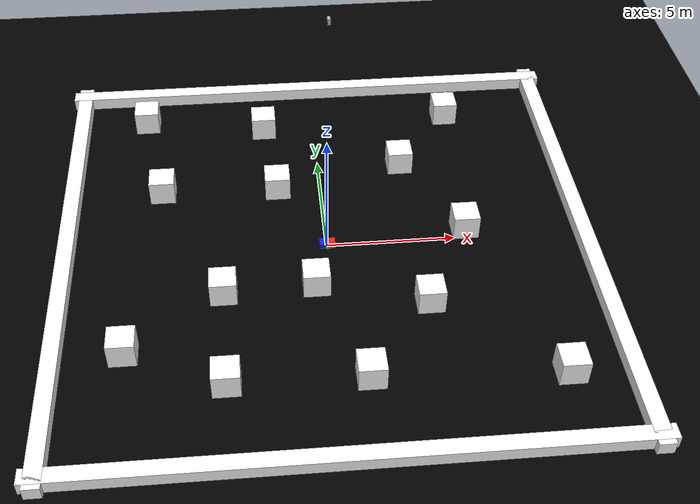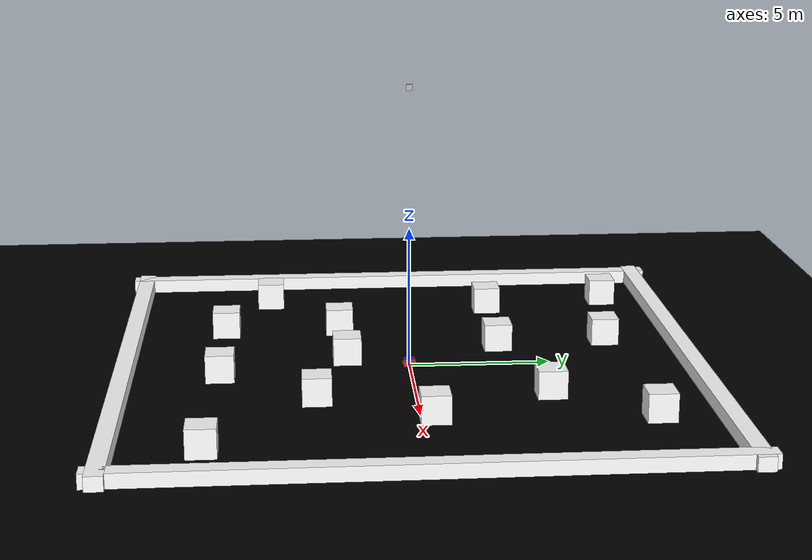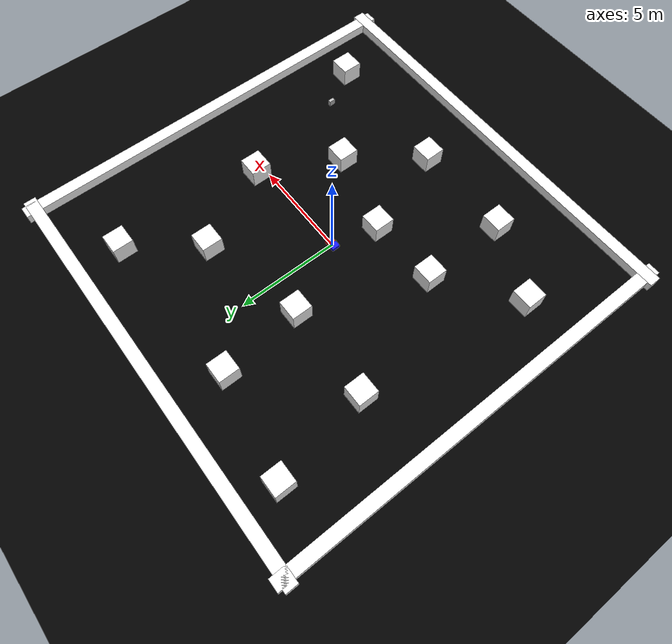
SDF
<sdf version='1.10'>
  <world name='empty'>
    <physics name='1ms' type='ignored'>
      <max_step_size>0.001</max_step_size>
      <real_time_factor>1</real_time_factor>
      <real_time_update_rate>1000</real_time_update_rate>
    </physics>
    <plugin name='gz::sim::systems::Physics' filename='gz-sim-physics-system'/>
    <plugin name='gz::sim::systems::UserCommands' filename='gz-sim-user-commands-system'/>
    <plugin name='gz::sim::systems::SceneBroadcaster' filename='gz-sim-scene-broadcaster-system'/>
    <plugin name='gz::sim::systems::Contact' filename='gz-sim-contact-system'/>
    <plugin name='gz::sim::systems::Sensors' filename='gz-sim-sensors-system'/>
    <gravity>0 0 -9.8000000000000007</gravity>
    <magnetic_field>5.5644999999999998e-06 2.2875799999999999e-05 -4.2388400000000002e-05</magnetic_field>
    <atmosphere type='adiabatic'/>
    <scene>
      <ambient>0.400000006 0.400000006 0.400000006 1</ambient>
      <background>0.699999988 0.699999988 0.699999988 1</background>
      <shadows>true</shadows>
    </scene>
    <model name='ground_plane'>
      <static>true</static>
      <link name='link'>
        <collision name='collision'>
          <geometry>
            <plane>
              <normal>0 0 1</normal>
              <size>100 100</size>
            </plane>
          </geometry>
          <surface>
            <friction>
              <ode/>
            </friction>
            <bounce/>
            <contact/>
          </surface>
        </collision>
        <visual name='visual'>
          <geometry>
            <plane>
              <normal>0 0 1</normal>
              <size>100 100</size>
            </plane>
          </geometry>
          <material>
            <ambient>0 0 0 1</ambient>
            <diffuse>0 0 0 1</diffuse>
            <specular>0 0 0 1</specular>
          </material>
        </visual>
        <pose>0 0 0 0 0 0</pose>
        <inertial>
          <pose>0 0 0 0 0 0</pose>
          <mass>1</mass>
          <inertia>
            <ixx>1</ixx>
            <ixy>0</ixy>
            <ixz>0</ixz>
            <iyy>1</iyy>
            <iyz>0</iyz>
            <izz>1</izz>
          </inertia>
        </inertial>
        <enable_wind>false</enable_wind>
      </link>
      <pose>0 0 0 0 0 0</pose>
      <self_collide>false</self_collide>
    </model>
    <!-- AMR with two-color markers (red front, blue rear) -->
    <model name='amr_with_markers'>
      <pose>0 0 0 0 0 0</pose>
      <static>false</static>

      <link name='base_link'>
        <pose>0 0 0.13 0 0 0</pose>
        <inertial>
          <mass>20.0</mass>
          <inertia>
            <ixx>1.0</ixx><iyy>1.0</iyy><izz>1.0</izz>
          </inertia>
        </inertial>
        <collision name='base_collision'>
          <geometry>
            <box><size>0.60 0.40 0.18</size></box>
          </geometry>
        </collision>
        <!-- Split the base into a red front half and blue rear half for robust color detection -->
        <visual name='base_visual_red'>
          <pose>0.15 0 0 0 0 0</pose>
          <geometry>
            <!-- half the length of the base (front) -->
            <box><size>0.30 0.40 0.18</size></box>
          </geometry>
          <material>
            <ambient>0.9 0.1 0.1 1</ambient>
            <diffuse>0.95 0.1 0.1 1</diffuse>
          </material>
        </visual>
        <visual name='base_visual_blue'>
          <pose>-0.15 0 0 0 0 0</pose>
          <geometry>
            <!-- half the length of the base (rear) -->
            <box><size>0.30 0.40 0.18</size></box>
          </geometry>
          <material>
            <ambient>0.1 0.1 0.9 1</ambient>
            <diffuse>0.1 0.1 0.95 1</diffuse>
          </material>
        </visual>
      </link>

      <link name='marker_front'>
        <pose>0.18 0.0 0.20 0 0 0</pose>
        <visual name='marker_front_visual'>
          <geometry>
            <cylinder><radius>0.06</radius><length>0.02</length></cylinder>
          </geometry>
          <material>
            <ambient>0.8 0.1 0.1 1</ambient>
            <diffuse>0.9 0.1 0.1 1</diffuse>
          </material>
        </visual>
      </link>

      <link name='marker_rear'>
        <pose>-0.18 0.0 0.20 0 0 0</pose>
        <visual name='marker_rear_visual'>
          <geometry>
            <cylinder><radius>0.06</radius><length>0.02</length></cylinder>
          </geometry>
          <material>
            <ambient>0.1 0.1 0.8 1</ambient>
            <diffuse>0.1 0.1 0.9 1</diffuse>
          </material>
        </visual>
      </link>

      <joint name='joint_marker_front' type='fixed'>
        <parent>base_link</parent>
        <child>marker_front</child>
      </joint>
      <joint name='joint_marker_rear' type='fixed'>
        <parent>base_link</parent>
        <child>marker_rear</child>
      </joint>

      <!-- New driving wheel (left) — green, no stripe -->
      <link name='left_wheel_link'>
        <pose>0 0.20 0.110 0 0 0</pose>
        <visual name='left_wheel_visual'>
          <pose>0 0 0 1.57079632679 0 0</pose>
          <geometry>
            <cylinder><radius>0.09</radius><length>0.06</length></cylinder>
          </geometry>
          <material>
            <ambient>0 0.6 0 1</ambient>
            <diffuse>0 0.8 0 1</diffuse>
          </material>
        </visual>
        <collision name='left_wheel_collision'>
          <pose>0 0 0 1.57079632679 0 0</pose>
          <geometry>
            <cylinder><radius>0.09</radius><length>0.06</length></cylinder>
          </geometry>
          <surface>
            <friction>
              <ode>
                <mu>1.0</mu>
                <mu2>1.0</mu2>
              </ode>
            </friction>
          </surface>
        </collision>
      </link>
      <!-- New driving wheel (right) — green, no stripe -->
      <link name='right_wheel_link'>
        <pose>0 -0.20 0.110 0 0 0</pose>
        <visual name='right_wheel_visual'>
          <pose>0 0 0 1.57079632679 0 0</pose>
          <geometry>
            <cylinder><radius>0.09</radius><length>0.06</length></cylinder>
          </geometry>
          <material>
            <ambient>0 0.6 0 1</ambient>
            <diffuse>0 0.8 0 1</diffuse>
          </material>
        </visual>
        <collision name='right_wheel_collision'>
          <pose>0 0 0 1.57079632679 0 0</pose>
          <geometry>
            <cylinder><radius>0.09</radius><length>0.06</length></cylinder>
          </geometry>
          <surface>
            <friction>
              <ode>
                <mu>1.0</mu>
                <mu2>1.0</mu2>
              </ode>
            </friction>
          </surface>
        </collision>
      </link>

      <joint name='left_wheel_joint' type='revolute'>
        <parent>base_link</parent>
        <child>left_wheel_link</child>
        <axis><xyz>0 1 0</xyz></axis>
      </joint>
      <joint name='right_wheel_joint' type='revolute'>
        <parent>base_link</parent>
        <child>right_wheel_link</child>
        <axis><xyz>0 1 0</xyz></axis>
      </joint>

      <!-- Small caster wheels for front and rear support -->
      <link name='caster_front'>
        <pose>0.22 0 0.057 0 0 0</pose>
        <visual name='caster_front_visual'>
          <geometry><sphere><radius>0.03</radius></sphere></geometry>
          <material><ambient>0.2 0.2 0.2 1</ambient></material>
        </visual>
        <collision name='caster_front_collision'>
          <geometry><sphere><radius>0.03</radius></sphere></geometry>
        </collision>
        <inertial>
          <mass>0.02</mass>
        </inertial>
      </link>
      <joint name='caster_front_joint' type='revolute'>
        <parent>base_link</parent>
        <child>caster_front</child>
        <axis><xyz>0 1 0</xyz></axis>
      </joint>

      <link name='caster_rear'>
        <pose>-0.22 0 0.057 0 0 0</pose>
        <visual name='caster_rear_visual'>
          <geometry><sphere><radius>0.03</radius></sphere></geometry>
          <material><ambient>0.2 0.2 0.2 1</ambient></material>
        </visual>
        <collision name='caster_rear_collision'>
          <geometry><sphere><radius>0.03</radius></sphere></geometry>
        </collision>
        <inertial>
          <mass>0.02</mass>
        </inertial>
      </link>
      <joint name='caster_rear_joint' type='revolute'>
        <parent>base_link</parent>
        <child>caster_rear</child>
        <axis><xyz>0 1 0</xyz></axis>
      </joint>

      <!-- Diff-drive plugin (Ignition/Gazebo compatible): publishes /odom and consumes /cmd_vel -->
      <plugin name='ignition::gazebo::systems::DiffDrive' filename='libignition-gazebo-diff-drive-system.so'>
        <left_joint>left_wheel_joint</left_joint>
        <right_joint>right_wheel_joint</right_joint>
        <wheel_separation>0.40</wheel_separation>
        <wheel_radius>0.09</wheel_radius>
        <!-- topic where velocity commands are read -->
        <topic>/cmd_vel</topic>
        <!-- odometry output -->
        <frame_id>odom</frame_id>
        <child_frame_id>base_link</child_frame_id>
        <odom_publish_frequency>100</odom_publish_frequency>
      </plugin>
    </model>
    <model name='box'>
      <pose>3.3872870678653726 4.567648033985396 0.49999999990199806 6.2287739151293738e-22 9.3279666454713669e-22 -3.6315533669320137e-22</pose>
      <link name='box_link'>
        <inertial>
          <inertia>
            <ixx>0.16666</ixx>
            <ixy>0</ixy>
            <ixz>0</ixz>
            <iyy>0.16666</iyy>
            <iyz>0</iyz>
            <izz>0.16666</izz>
          </inertia>
          <mass>1</mass>
          <pose>0 0 0 0 0 0</pose>
        </inertial>
        <collision name='box_collision'>
          <geometry>
            <box>
              <size>1 1 1</size>
            </box>
          </geometry>
          <surface>
            <friction>
              <ode/>
            </friction>
            <bounce/>
            <contact/>
          </surface>
        </collision>
        <visual name='box_visual'>
          <geometry>
            <box>
              <size>1 1 1</size>
            </box>
          </geometry>
          <material>
            <ambient>1 1 1 1</ambient>
            <diffuse>1 1 1 1</diffuse>
            <specular>0.100000001 0.100000001 0.100000001 1</specular>
          </material>
        </visual>
        <pose>0 0 0 0 0 0</pose>
        <enable_wind>false</enable_wind>
      </link>
      <static>false</static>
      <self_collide>false</self_collide>
    </model>
    <model name='box_1'>
      <pose>-4.0205461991467164 -2.3516789515182071 0.49999999990199806 6.2287739151293738e-22 9.3279666454713669e-22 -3.6315533669320137e-22</pose>
      <link name='box_link'>
        <inertial>
          <inertia>
            <ixx>0.16666</ixx>
            <ixy>0</ixy>
            <ixz>0</ixz>
            <iyy>0.16666</iyy>
            <iyz>0</iyz>
            <izz>0.16666</izz>
          </inertia>
          <mass>1</mass>
          <pose>0 0 0 0 0 0</pose>
        </inertial>
        <collision name='box_collision'>
          <geometry>
            <box>
              <size>1 1 1</size>
            </box>
          </geometry>
          <surface>
            <friction>
              <ode/>
            </friction>
            <bounce/>
            <contact/>
          </surface>
        </collision>
        <visual name='box_visual'>
          <geometry>
            <box>
              <size>1 1 1</size>
            </box>
          </geometry>
          <material>
            <ambient>1 1 1 1</ambient>
            <diffuse>1 1 1 1</diffuse>
            <specular>0.100000001 0.100000001 0.100000001 1</specular>
          </material>
        </visual>
        <pose>0 0 0 0 0 0</pose>
        <enable_wind>false</enable_wind>
      </link>
      <static>false</static>
      <self_collide>false</self_collide>
    </model>
    <model name='box_2'>
      <pose>3.4940917268388993 -3.3550829611756239 0.49999999990199806 6.2287739151293738e-22 9.3279666454713669e-22 -3.6315533669320137e-22</pose>
      <link name='box_link'>
        <inertial>
          <inertia>
            <ixx>0.16666</ixx>
            <ixy>0</ixy>
            <ixz>0</ixz>
            <iyy>0.16666</iyy>
            <iyz>0</iyz>
            <izz>0.16666</izz>
          </inertia>
          <mass>1</mass>
          <pose>0 0 0 0 0 0</pose>
        </inertial>
        <collision name='box_collision'>
          <geometry>
            <box>
              <size>1 1 1</size>
            </box>
          </geometry>
          <surface>
            <friction>
              <ode/>
            </friction>
            <bounce/>
            <contact/>
          </surface>
        </collision>
        <visual name='box_visual'>
          <geometry>
            <box>
              <size>1 1 1</size>
            </box>
          </geometry>
          <material>
            <ambient>1 1 1 1</ambient>
            <diffuse>1 1 1 1</diffuse>
            <specular>0.100000001 0.100000001 0.100000001 1</specular>
          </material>
        </visual>
        <pose>0 0 0 0 0 0</pose>
        <enable_wind>false</enable_wind>
      </link>
      <static>false</static>
      <self_collide>false</self_collide>
    </model>
    <model name='box_3'>
      <pose>-1.7558981664756481 3.3625765944207417 0.49999999990199806 6.2287739151293738e-22 9.3279666454713669e-22 -3.6315533669320137e-22</pose>
      <link name='box_link'>
        <inertial>
          <inertia>
            <ixx>0.16666</ixx>
            <ixy>0</ixy>
            <ixz>0</ixz>
            <iyy>0.16666</iyy>
            <iyz>0</iyz>
            <izz>0.16666</izz>
          </inertia>
          <mass>1</mass>
          <pose>0 0 0 0 0 0</pose>
        </inertial>
        <collision name='box_collision'>
          <geometry>
            <box>
              <size>1 1 1</size>
            </box>
          </geometry>
          <surface>
            <friction>
              <ode/>
            </friction>
            <bounce/>
            <contact/>
          </surface>
        </collision>
        <visual name='box_visual'>
          <geometry>
            <box>
              <size>1 1 1</size>
            </box>
          </geometry>
          <material>
            <ambient>1 1 1 1</ambient>
            <diffuse>1 1 1 1</diffuse>
            <specular>0.100000001 0.100000001 0.100000001 1</specular>
          </material>
        </visual>
        <pose>0 0 0 0 0 0</pose>
        <enable_wind>false</enable_wind>
      </link>
      <static>false</static>
      <self_collide>false</self_collide>
    </model>
    <model name='box_4'>
      <pose>5.4301532776134565 0.44632967436305093 0.49999999990199806 6.2287739151293738e-22 9.3279666454713669e-22 -3.6315533669320137e-22</pose>
      <link name='box_link'>
        <inertial>
          <inertia>
            <ixx>0.16666</ixx>
            <ixy>0</ixy>
            <ixz>0</ixz>
            <iyy>0.16666</iyy>
            <iyz>0</iyz>
            <izz>0.16666</izz>
          </inertia>
          <mass>1</mass>
          <pose>0 0 0 0 0 0</pose>
        </inertial>
        <collision name='box_collision'>
          <geometry>
            <box>
              <size>1 1 1</size>
            </box>
          </geometry>
          <surface>
            <friction>
              <ode/>
            </friction>
            <bounce/>
            <contact/>
          </surface>
        </collision>
        <visual name='box_visual'>
          <geometry>
            <box>
              <size>1 1 1</size>
            </box>
          </geometry>
          <material>
            <ambient>1 1 1 1</ambient>
            <diffuse>1 1 1 1</diffuse>
            <specular>0.100000001 0.100000001 0.100000001 1</specular>
          </material>
        </visual>
        <pose>0 0 0 0 0 0</pose>
        <enable_wind>false</enable_wind>
      </link>
      <static>false</static>
      <self_collide>false</self_collide>
    </model>
    <model name='box_5'>
      <pose>-6.3975016344592719 3.4922401292600371 0.49999999990199806 6.2287739151293738e-22 9.3279666454713669e-22 -3.6315533669320137e-22</pose>
      <link name='box_link'>
        <inertial>
          <inertia>
            <ixx>0.16666</ixx>
            <ixy>0</ixy>
            <ixz>0</ixz>
            <iyy>0.16666</iyy>
            <iyz>0</iyz>
            <izz>0.16666</izz>
          </inertia>
          <mass>1</mass>
          <pose>0 0 0 0 0 0</pose>
        </inertial>
        <collision name='box_collision'>
          <geometry>
            <box>
              <size>1 1 1</size>
            </box>
          </geometry>
          <surface>
            <friction>
              <ode/>
            </friction>
            <bounce/>
            <contact/>
          </surface>
        </collision>
        <visual name='box_visual'>
          <geometry>
            <box>
              <size>1 1 1</size>
            </box>
          </geometry>
          <material>
            <ambient>1 1 1 1</ambient>
            <diffuse>1 1 1 1</diffuse>
            <specular>0.100000001 0.100000001 0.100000001 1</specular>
          </material>
        </visual>
        <pose>0 0 0 0 0 0</pose>
        <enable_wind>false</enable_wind>
      </link>
      <static>false</static>
      <self_collide>false</self_collide>
    </model>
    <model name='box_6'>
      <pose>-2.1597307412584734 7.3782824438070893 0.49999999990199806 6.2287739151293738e-22 9.3279666454713669e-22 -3.6315533669320137e-22</pose>
      <link name='box_link'>
        <inertial>
          <inertia>
            <ixx>0.16666</ixx>
            <ixy>0</ixy>
            <ixz>0</ixz>
            <iyy>0.16666</iyy>
            <iyz>0</iyz>
            <izz>0.16666</izz>
          </inertia>
          <mass>1</mass>
          <pose>0 0 0 0 0 0</pose>
        </inertial>
        <collision name='box_collision'>
          <geometry>
            <box>
              <size>1 1 1</size>
            </box>
          </geometry>
          <surface>
            <friction>
              <ode/>
            </friction>
            <bounce/>
            <contact/>
          </surface>
        </collision>
        <visual name='box_visual'>
          <geometry>
            <box>
              <size>1 1 1</size>
            </box>
          </geometry>
          <material>
            <ambient>1 1 1 1</ambient>
            <diffuse>1 1 1 1</diffuse>
            <specular>0.100000001 0.100000001 0.100000001 1</specular>
          </material>
        </visual>
        <pose>0 0 0 0 0 0</pose>
        <enable_wind>false</enable_wind>
      </link>
      <static>false</static>
      <self_collide>false</self_collide>
    </model>
    <model name='box_7'>
      <pose>-3.9710976849590458 -6.5805872994836854 0.49999999990199806 2.7978952040515579e-21 -1.4341784499369103e-22 3.1137257328605568e-22</pose>
      <link name='box_link'>
        <inertial>
          <inertia>
            <ixx>0.16666</ixx>
            <ixy>0</ixy>
            <ixz>0</ixz>
            <iyy>0.16666</iyy>
            <iyz>0</iyz>
            <izz>0.16666</izz>
          </inertia>
          <mass>1</mass>
          <pose>0 0 0 0 0 0</pose>
        </inertial>
        <collision name='box_collision'>
          <geometry>
            <box>
              <size>1 1 1</size>
            </box>
          </geometry>
          <surface>
            <friction>
              <ode/>
            </friction>
            <bounce/>
            <contact/>
          </surface>
        </collision>
        <visual name='box_visual'>
          <geometry>
            <box>
              <size>1 1 1</size>
            </box>
          </geometry>
          <material>
            <ambient>1 1 1 1</ambient>
            <diffuse>1 1 1 1</diffuse>
            <specular>0.100000001 0.100000001 0.100000001 1</specular>
          </material>
        </visual>
        <pose>0 0 0 0 0 0</pose>
        <enable_wind>false</enable_wind>
      </link>
      <static>false</static>
      <self_collide>false</self_collide>
    </model>
    <model name='box_8'>
      <pose>0.9565262933413532 -6.661302671844223 0.49999999990199806 6.2287739151293738e-22 9.3279666454713669e-22 -3.6315533669320137e-22</pose>
      <link name='box_link'>
        <inertial>
          <inertia>
            <ixx>0.16666</ixx>
            <ixy>0</ixy>
            <ixz>0</ixz>
            <iyy>0.16666</iyy>
            <iyz>0</iyz>
            <izz>0.16666</izz>
          </inertia>
          <mass>1</mass>
          <pose>0 0 0 0 0 0</pose>
        </inertial>
        <collision name='box_collision'>
          <geometry>
            <box>
              <size>1 1 1</size>
            </box>
          </geometry>
          <surface>
            <friction>
              <ode/>
            </friction>
            <bounce/>
            <contact/>
          </surface>
        </collision>
        <visual name='box_visual'>
          <geometry>
            <box>
              <size>1 1 1</size>
            </box>
          </geometry>
          <material>
            <ambient>1 1 1 1</ambient>
            <diffuse>1 1 1 1</diffuse>
            <specular>0.100000001 0.100000001 0.100000001 1</specular>
          </material>
        </visual>
        <pose>0 0 0 0 0 0</pose>
        <enable_wind>false</enable_wind>
      </link>
      <static>false</static>
      <self_collide>false</self_collide>
    </model>
    <model name='box_9'>
      <pose>7.7850373648470885 -6.9935845397432299 0.49999999990199806 6.2287739151293738e-22 9.3279666454713669e-22 -3.6315533669320137e-22</pose>
      <link name='box_link'>
        <inertial>
          <inertia>
            <ixx>0.16666</ixx>
            <ixy>0</ixy>
            <ixz>0</ixz>
            <iyy>0.16666</iyy>
            <iyz>0</iyz>
            <izz>0.16666</izz>
          </inertia>
          <mass>1</mass>
          <pose>0 0 0 0 0 0</pose>
        </inertial>
        <collision name='box_collision'>
          <geometry>
            <box>
              <size>1 1 1</size>
            </box>
          </geometry>
          <surface>
            <friction>
              <ode/>
            </friction>
            <bounce/>
            <contact/>
          </surface>
        </collision>
        <visual name='box_visual'>
          <geometry>
            <box>
              <size>1 1 1</size>
            </box>
          </geometry>
          <material>
            <ambient>1 1 1 1</ambient>
            <diffuse>1 1 1 1</diffuse>
            <specular>0.100000001 0.100000001 0.100000001 1</specular>
          </material>
        </visual>
        <pose>0 0 0 0 0 0</pose>
        <enable_wind>false</enable_wind>
      </link>
      <static>false</static>
      <self_collide>false</self_collide>
    </model>
    <model name='box_10'>
      <pose>-7.5438275911364645 -4.9431935732524641 0.49999999990199806 6.2287739151293738e-22 9.3279666454713669e-22 -3.6315533669320137e-22</pose>
      <link name='box_link'>
        <inertial>
          <inertia>
            <ixx>0.16666</ixx>
            <ixy>0</ixy>
            <ixz>0</ixz>
            <iyy>0.16666</iyy>
            <iyz>0</iyz>
            <izz>0.16666</izz>
          </inertia>
          <mass>1</mass>
          <pose>0 0 0 0 0 0</pose>
        </inertial>
        <collision name='box_collision'>
          <geometry>
            <box>
              <size>1 1 1</size>
            </box>
          </geometry>
          <surface>
            <friction>
              <ode/>
            </friction>
            <bounce/>
            <contact/>
          </surface>
        </collision>
        <visual name='box_visual'>
          <geometry>
            <box>
              <size>1 1 1</size>
            </box>
          </geometry>
          <material>
            <ambient>1 1 1 1</ambient>
            <diffuse>1 1 1 1</diffuse>
            <specular>0.100000001 0.100000001 0.100000001 1</specular>
          </material>
        </visual>
        <pose>0 0 0 0 0 0</pose>
        <enable_wind>false</enable_wind>
      </link>
      <static>false</static>
      <self_collide>false</self_collide>
    </model>
    <model name='box_11'>
      <pose>5.7864630806922097 7.7812248374654027 0.49999999990199806 1.6258879611171386e-25 2.8834196501176479e-21 -1.4428456090324048e-22</pose>
      <link name='box_link'>
        <inertial>
          <inertia>
            <ixx>0.16666</ixx>
            <ixy>0</ixy>
            <ixz>0</ixz>
            <iyy>0.16666</iyy>
            <iyz>0</iyz>
            <izz>0.16666</izz>
          </inertia>
          <mass>1</mass>
          <pose>0 0 0 0 0 0</pose>
        </inertial>
        <collision name='box_collision'>
          <geometry>
            <box>
              <size>1 1 1</size>
            </box>
          </geometry>
          <surface>
            <friction>
              <ode/>
            </friction>
            <bounce/>
            <contact/>
          </surface>
        </collision>
        <visual name='box_visual'>
          <geometry>
            <box>
              <size>1 1 1</size>
            </box>
          </geometry>
          <material>
            <ambient>1 1 1 1</ambient>
            <diffuse>1 1 1 1</diffuse>
            <specular>0.100000001 0.100000001 0.100000001 1</specular>
          </material>
        </visual>
        <pose>0 0 0 0 0 0</pose>
        <enable_wind>false</enable_wind>
      </link>
      <static>false</static>
      <self_collide>false</self_collide>
    </model>
    <model name='box_12'>
      <pose>-0.58569440119947824 -2.190402169648737 0.49999999990199806 6.2287739151293738e-22 9.3279666454713669e-22 -3.6315533669320137e-22</pose>
      <link name='box_link'>
        <inertial>
          <inertia>
            <ixx>0.16666</ixx>
            <ixy>0</ixy>
            <ixz>0</ixz>
            <iyy>0.16666</iyy>
            <iyz>0</iyz>
            <izz>0.16666</izz>
          </inertia>
          <mass>1</mass>
          <pose>0 0 0 0 0 0</pose>
        </inertial>
        <collision name='box_collision'>
          <geometry>
            <box>
              <size>1 1 1</size>
            </box>
          </geometry>
          <surface>
            <friction>
              <ode/>
            </friction>
            <bounce/>
            <contact/>
          </surface>
        </collision>
        <visual name='box_visual'>
          <geometry>
            <box>
              <size>1 1 1</size>
            </box>
          </geometry>
          <material>
            <ambient>1 1 1 1</ambient>
            <diffuse>1 1 1 1</diffuse>
            <specular>0.100000001 0.100000001 0.100000001 1</specular>
          </material>
        </visual>
        <pose>0 0 0 0 0 0</pose>
        <enable_wind>false</enable_wind>
      </link>
      <static>false</static>
      <self_collide>false</self_collide>
    </model>
    <model name='box_13'>
      <pose>-7.1826543954759483 8.192135485832253 0.49999999990199806 6.2287739151293738e-22 9.3279666454713669e-22 -3.6315533669320137e-22</pose>
      <link name='box_link'>
        <inertial>
          <inertia>
            <ixx>0.16666</ixx>
            <ixy>0</ixy>
            <ixz>0</ixz>
            <iyy>0.16666</iyy>
            <iyz>0</iyz>
            <izz>0.16666</izz>
          </inertia>
          <mass>1</mass>
          <pose>0 0 0 0 0 0</pose>
        </inertial>
        <collision name='box_collision'>
          <geometry>
            <box>
              <size>1 1 1</size>
            </box>
          </geometry>
          <surface>
            <friction>
              <ode/>
            </friction>
            <bounce/>
            <contact/>
          </surface>
        </collision>
        <visual name='box_visual'>
          <geometry>
            <box>
              <size>1 1 1</size>
            </box>
          </geometry>
          <material>
            <ambient>1 1 1 1</ambient>
            <diffuse>1 1 1 1</diffuse>
            <specular>0.100000001 0.100000001 0.100000001 1</specular>
          </material>
        </visual>
        <pose>0 0 0 0 0 0</pose>
        <enable_wind>false</enable_wind>
      </link>
      <static>false</static>
      <self_collide>false</self_collide>
    </model>
*** End Patch
    <model name='camera_bot'>
      <link name='base_link'>
        <pose>0 0 0.050000000000000003 0 0 0</pose>
        <collision name='collision'>
          <geometry>
            <box>
              <size>0.20000000000000001 0.20000000000000001 0.10000000000000001</size>
            </box>
          </geometry>
          <surface>
            <friction>
              <ode/>
            </friction>
            <bounce/>
            <contact/>
          </surface>
        </collision>
        <visual name='visual'>
          <geometry>
            <box>
              <size>0.20000000000000001 0.20000000000000001 0.10000000000000001</size>
            </box>
          </geometry>
        </visual>
        <sensor name='top_camera' type='camera'>
          <pose>0 0 0.080000000000000002 0 0 0</pose>
          <topic>__default__</topic>
          <update_rate>30</update_rate>
          <enable_metrics>false</enable_metrics>
          <camera>
            <pose>0 0 0 0 0 0</pose>
            <horizontal_fov>1.74533</horizontal_fov>
            <image>
              <width>480</width>
              <height>480</height>
              <format>RGB_INT8</format>
              <anti_aliasing>4</anti_aliasing>
            </image>
            <camera_info_topic>__default__</camera_info_topic>
            <trigger_topic></trigger_topic>
            <triggered>false</triggered>
            <clip>
              <near>0.10000000000000001</near>
              <far>150</far>
            </clip>
            <save enabled='false'>
              <path>__default__</path>
            </save>
            <visibility_mask>4294967295</visibility_mask>
            <noise>
              <type>none</type>
              <mean>0</mean>
              <stddev>0</stddev>
            </noise>
            <distortion>
              <k1>0</k1>
              <k2>0</k2>
              <k3>0</k3>
              <p1>0</p1>
              <p2>0</p2>
              <center>0.5 0.5</center>
            </distortion>
            <lens>
              <type>stereographic</type>
              <scale_to_hfov>true</scale_to_hfov>
              <cutoff_angle>1.5707963267948966</cutoff_angle>
              <env_texture_size>256</env_texture_size>
            </lens>
            <optical_frame_id></optical_frame_id>
          </camera>
        </sensor>
        <inertial>
          <pose>0 0 0 0 0 0</pose>
          <mass>1</mass>
          <inertia>
            <ixx>1</ixx>
            <ixy>0</ixy>
            <ixz>0</ixz>
            <iyy>1</iyy>
            <iyz>0</iyz>
            <izz>1</izz>
          </inertia>
        </inertial>
        <enable_wind>false</enable_wind>
      </link>
      <static>true</static>
      <pose>6.9388939039072284e-18 0 10 0 1.5699999999998482 0</pose>
      <self_collide>false</self_collide>
    </model>
    <model name='border_walls'>
      <static>true</static>
      <link name='north_wall'>
        <pose>0 10 0.25 0 0 0</pose>
        <collision name='north_collision'>
          <geometry>
            <box>
              <size>21 0.59999999999999998 0.5</size>
            </box>
          </geometry>
          <surface>
            <friction>
              <ode/>
            </friction>
            <bounce/>
            <contact/>
          </surface>
        </collision>
        <visual name='north_visual'>
          <geometry>
            <box>
              <size>21 0.59999999999999998 0.5</size>
            </box>
          </geometry>
          <material>
            <ambient>1 1 1 1</ambient>
            <diffuse>1 1 1 1</diffuse>
            <specular>0 0 0 1</specular>
          </material>
        </visual>
        <inertial>
          <pose>0 0 0 0 0 0</pose>
          <mass>1</mass>
          <inertia>
            <ixx>1</ixx>
            <ixy>0</ixy>
            <ixz>0</ixz>
            <iyy>1</iyy>
            <iyz>0</iyz>
            <izz>1</izz>
          </inertia>
        </inertial>
        <enable_wind>false</enable_wind>
      </link>
      <link name='south_wall'>
        <pose>0 -10 0.25 0 0 0</pose>
        <collision name='south_collision'>
          <geometry>
            <box>
              <size>21 0.59999999999999998 0.5</size>
            </box>
          </geometry>
          <surface>
            <friction>
              <ode/>
            </friction>
            <bounce/>
            <contact/>
          </surface>
        </collision>
        <visual name='south_visual'>
          <geometry>
            <box>
              <size>21 0.59999999999999998 0.5</size>
            </box>
          </geometry>
          <material>
            <ambient>1 1 1 1</ambient>
            <diffuse>1 1 1 1</diffuse>
            <specular>0 0 0 1</specular>
          </material>
        </visual>
        <inertial>
          <pose>0 0 0 0 0 0</pose>
          <mass>1</mass>
          <inertia>
            <ixx>1</ixx>
            <ixy>0</ixy>
            <ixz>0</ixz>
            <iyy>1</iyy>
            <iyz>0</iyz>
            <izz>1</izz>
          </inertia>
        </inertial>
        <enable_wind>false</enable_wind>
      </link>
      <link name='east_wall'>
        <pose>10 0 0.25 0 0 0</pose>
        <collision name='east_collision'>
          <geometry>
            <box>
              <size>0.59999999999999998 21 0.5</size>
            </box>
          </geometry>
          <surface>
            <friction>
              <ode/>
            </friction>
            <bounce/>
            <contact/>
          </surface>
        </collision>
        <visual name='east_visual'>
          <geometry>
            <box>
              <size>0.59999999999999998 21 0.5</size>
            </box>
          </geometry>
          <material>
            <ambient>1 1 1 1</ambient>
            <diffuse>1 1 1 1</diffuse>
            <specular>0 0 0 1</specular>
          </material>
        </visual>
        <inertial>
          <pose>0 0 0 0 0 0</pose>
          <mass>1</mass>
          <inertia>
            <ixx>1</ixx>
            <ixy>0</ixy>
            <ixz>0</ixz>
            <iyy>1</iyy>
            <iyz>0</iyz>
            <izz>1</izz>
          </inertia>
        </inertial>
        <enable_wind>false</enable_wind>
      </link>
      <link name='west_wall'>
        <pose>-10 0 0.25 0 0 0</pose>
        <collision name='west_collision'>
          <geometry>
            <box>
              <size>0.59999999999999998 21 0.5</size>
            </box>
          </geometry>
          <surface>
            <friction>
              <ode/>
            </friction>
            <bounce/>
            <contact/>
          </surface>
        </collision>
        <visual name='west_visual'>
          <geometry>
            <box>
              <size>0.59999999999999998 21 0.5</size>
            </box>
          </geometry>
          <material>
            <ambient>1 1 1 1</ambient>
            <diffuse>1 1 1 1</diffuse>
            <specular>0 0 0 1</specular>
          </material>
        </visual>
        <inertial>
          <pose>0 0 0 0 0 0</pose>
          <mass>1</mass>
          <inertia>
            <ixx>1</ixx>
            <ixy>0</ixy>
            <ixz>0</ixz>
            <iyy>1</iyy>
            <iyz>0</iyz>
            <izz>1</izz>
          </inertia>
        </inertial>
        <enable_wind>false</enable_wind>
      </link>
      <pose>0 0 0 0 0 0</pose>
      <self_collide>false</self_collide>
    </model>
    <light name='sun' type='directional'>
      <pose>0 0 10 0 0 0</pose>
      <cast_shadows>true</cast_shadows>
      <intensity>1</intensity>
      <direction>-0.5 0.10000000000000001 -0.90000000000000002</direction>
      <diffuse>0.800000012 0.800000012 0.800000012 1</diffuse>
      <specular>0.200000003 0.200000003 0.200000003 1</specular>
      <attenuation>
        <range>1000</range>
        <linear>0.0099999997764825821</linear>
        <constant>0.89999997615814209</constant>
        <quadratic>0.0010000000474974513</quadratic>
      </attenuation>
      <spot>
        <inner_angle>0</inner_angle>
        <outer_angle>0</outer_angle>
        <falloff>0</falloff>
      </spot>
    </light>
  </world>
</sdf>
